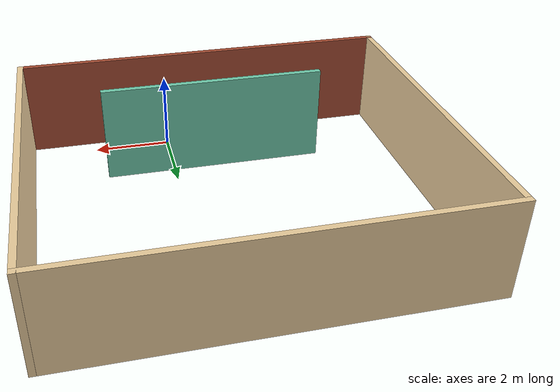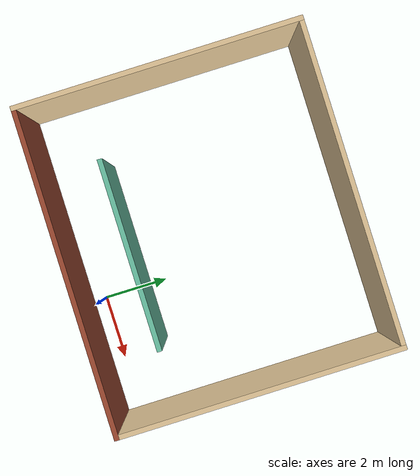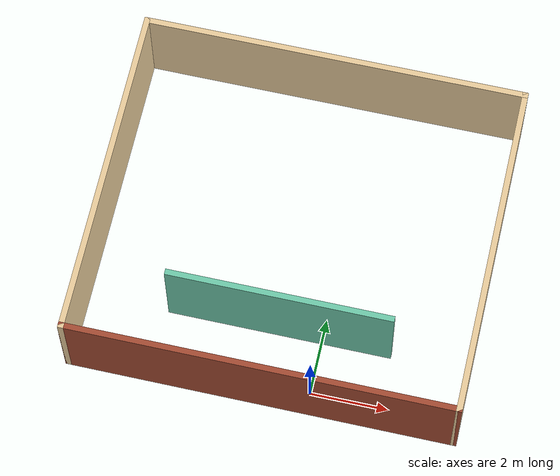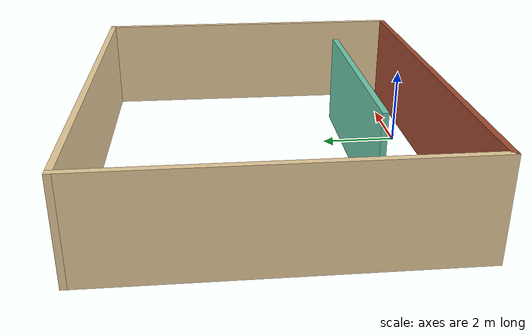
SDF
<sdf version="1.6">
 <world name="indoor_env">
  <model name="Indoor_Env">
   <pose>-1.16505 3.81829 0 0 -0 0</pose>
   <link name="Wall_3">
    <collision name="Wall_3_Collision">
     <geometry><box><size>8.75 0.15 2.5</size></box></geometry>
     <pose>0 0 1.25 0 -0 0</pose>
    </collision>
    <visual name="Wall_3_Visual">
     <pose>0 0 1.25 0 -0 0</pose>
     <geometry><box><size>8.75 0.15 2.5</size></box></geometry>
     <material>
      <script><uri>file://media/materials/scripts/gazebo.material</uri><name>Gazebo/Grey</name></script>
      <ambient>0.921569 0.807843 0.615686 1</ambient>
     </material>
     <meta><layer>0</layer></meta>
    </visual>
    <pose>-4.925 -0 0 0 -0 -1.5708</pose>
   </link>
   <link name="Wall_4">
    <collision name="Wall_4_Collision">
     <geometry><box><size>10 0.15 2.5</size></box></geometry>
     <pose>0 0 1.25 0 -0 0</pose>
    </collision>
    <visual name="Wall_4_Visual">
     <pose>0 0 1.25 0 -0 0</pose>
     <geometry><box><size>10 0.15 2.5</size></box></geometry>
     <material>
      <script><uri>file://media/materials/scripts/gazebo.material</uri><name>Gazebo/Bricks</name></script>
      <ambient>0.921569 0.807843 0.615686 1</ambient>
     </material>
     <meta><layer>0</layer></meta>
    </visual>
    <pose>0 -4.3 0 0 -0 0</pose>
   </link>
   <link name="Wall_5">
    <collision name="Wall_5_Collision">
     <geometry><box><size>8.75 0.15 2.5</size></box></geometry>
     <pose>0 0 1.25 0 -0 0</pose>
    </collision>
    <visual name="Wall_5_Visual">
     <pose>0 0 1.25 0 -0 0</pose>
     <geometry><box><size>8.75 0.15 2.5</size></box></geometry>
     <material>
      <script><uri>file://media/materials/scripts/gazebo.material</uri><name>Gazebo/Grey</name></script>
      <ambient>0.921569 0.807843 0.615686 1</ambient>
     </material>
     <meta><layer>0</layer></meta>
    </visual>
    <pose>4.925 -0 0 0 -0 1.5708</pose>
   </link>
   <link name="Wall_6">
    <collision name="Wall_6_Collision">
     <geometry><box><size>10 0.15 2.5</size></box></geometry>
     <pose>0 0 1.25 0 -0 0</pose>
    </collision>
    <visual name="Wall_6_Visual">
     <pose>0 0 1.25 0 -0 0</pose>
     <geometry><box><size>10 0.15 2.5</size></box></geometry>
     <material>
      <script><uri>file://media/materials/scripts/gazebo.material</uri><name>Gazebo/Grey</name></script>
      <ambient>0.921569 0.807843 0.615686 1</ambient>
     </material>
     <meta><layer>0</layer></meta>
    </visual>
    <pose>0 4.3 0 0 -0 3.14159</pose>
   </link>
   <link name="Wall_9">
    <collision name="Wall_9_Collision">
     <geometry><box><size>5.75 0.15 2.5</size></box></geometry>
     <pose>0 0 1.25 0 -0 0</pose>
    </collision>
    <visual name="Wall_9_Visual">
     <pose>0 0 1.25 0 -0 0</pose>
     <geometry><box><size>5.75 0.15 2.5</size></box></geometry>
     <material>
      <script><uri>file://media/materials/scripts/gazebo.material</uri><name>Gazebo/Grey</name></script>
      <ambient>0.435294 0.796078 0.67451 1</ambient>
     </material>
     <meta><layer>0</layer></meta>
    </visual>
    <pose>0.06966 -2.38395 0 0 -0 0</pose>
   </link>
   <static>1</static>
  </model>
 </world>
</sdf>
